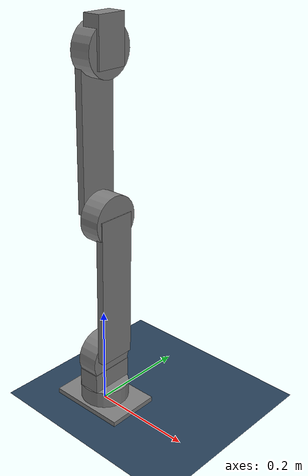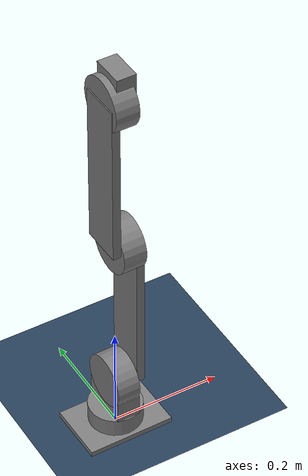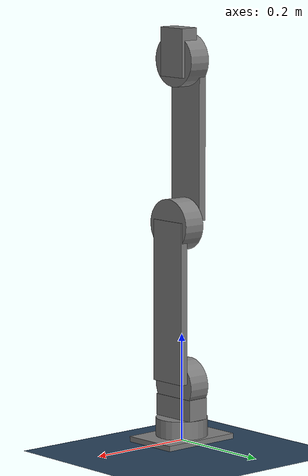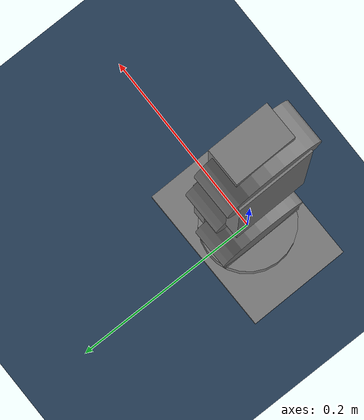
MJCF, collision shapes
<mujoco model="qmini_arm">
  <default>
    <default class="robot">
      <default class="visual">
        <geom contype="0" conaffinity="0" group="2" />
      </default>
      <default class="collision">
        <geom contype="1" conaffinity="1" group="3" />
      </default>
    </default>
    <default class="floor">
      <geom type="plane" size="2 2 0.05" material="groundplane" />
    </default>
  </default>

  <compiler angle="radian" meshdir="." balanceinertia="true" autolimits="true" />
  <option timestep="0.001" gravity="0 0 -9.80665" integrator="implicitfast"
          solver="Newton" iterations="100" />

  <visual>
    <global offwidth="3840" offheight="2160" />
    <headlight ambient="0.35 0.35 0.35" diffuse="0.8 0.8 0.8"
               specular="0.25 0.25 0.25" />
    <rgba haze="0.15 0.25 0.35 1" />
  </visual>

  <worldbody>
    <!-- The root body is free to translate and rotate in the world. -->
    <body name="qarm_root" childclass="robot" pos="0 0 0.0232">
      <joint name="root_free" type="free" />
      <body name="base_link" quat="0.6595 0.2558 -0.659 0.2556">
        <inertial pos="-0.001443936 0.000095279 0.000025880" mass="0.594063035" diaginertia="0.000935107 0.00055038 0.000529948" />
        <geom name="base_link_collision_0" quat="0.7071 0 0.7071 0" type="cylinder" size="0.04825 0.02115" class="collision" />
        <geom name="base_link_collision_1" pos="-0.018149996 0.000000291 -0.000000098" quat="0.6609 -0.2513 -0.2513 -0.6609" type="box" size="0.055 0.005 0.07944" class="collision" />
        <geom name="base_link_visual_0" type="mesh" mesh="base_link_motor" material="motor_gray" class="visual" />
        <geom name="base_link_visual_1" pos="-0.013149996 -0.040727332 -0.045814406" quat="0.6451 0.2897 -0.6451 -0.2897" type="mesh" mesh="base_link_base_pair" material="link_silver" class="visual" />
        <body name="link_1">
          <inertial pos="0.076902896 -0.000540190 -0.000692581" mass="0.567450382" diaginertia="0.000373485 0.00059489 0.000625051" />
          <joint name="joint_1" type="hinge" range="-3.141592654 3.141592654"
                 axis="1 0 0" damping="0.08" armature="0.001" />
          <geom name="link_1_collision_0" pos="0.041150004 0.000000013 -0.000000002" quat="0.6609 -0.2513 -0.2513 -0.6609" type="box" size="0.045 0.02 0.0215" class="collision" />
          <geom name="link_1_collision_1" pos="0.082449884 0.000464880 0.000523357" quat="-0.1263 -0.3322 -0.8737 0.3322" type="cylinder" size="0.04825 0.02115" class="collision" />
          <geom name="link_1_visual_0" pos="0.021150004 0.000000013 -0.000000002" quat="0.6609 -0.2513 -0.2513 -0.6609" type="mesh" mesh="link_1_joint_bracket" material="link_silver" class="visual" />
          <geom name="link_1_visual_1" pos="0.082449884 0.000464880 0.000523357" quat="0.7071 0 0.5285 -0.4698" type="mesh" mesh="base_link_motor" material="motor_gray" class="visual" />
          <body name="link_2" pos="0.082449884 0.000464880 0.000523357" quat="0.5002 0.4998 0.0418 -0.7059">
            <inertial pos="0.016355333 0.193045983 -0.171512178" mass="0.676212997" diaginertia="0.005975646 0.002778247 0.003380604" />
            <joint name="joint_2" type="hinge" range="-1.75 1.75"
                   axis="1 0 0" damping="0.08" armature="0.001" />
            <geom name="link_2_collision_0" pos="0.028650004 0.117945600 -0.104848942" quat="0.2513 0.6609 0.6609 -0.2513" type="box" size="0.15015 0.0075 0.0375" class="collision" />
            <geom name="link_2_collision_1" pos="0.013000008 0.224214994 -0.199318371" quat="0.4698 0.5285 -0.4698 -0.5285" type="cylinder" size="0.04825 0.02115" class="collision" />
            <geom name="link_2_visual_0" pos="0.026150004 0.224214862 -0.199318093" quat="0.2513 0.6609 0.6609 -0.2513" type="mesh" mesh="link_2_arm_link" material="link_silver" class="visual" />
            <geom name="link_2_visual_1" pos="0.013000008 0.224214994 -0.199318371" quat="0 0 -0.6644 -0.7474" type="mesh" mesh="base_link_motor" material="motor_gray" class="visual" />
            <body name="link_3" pos="0.013000008 0.224214994 -0.199318371" quat="0 0 -0.6644 -0.7474">
              <inertial pos="0.016353625 -0.193059219 0.171524730" mass="0.676213" diaginertia="0.0059635475 0.00277030433 0.00337659291" />
              <joint name="joint_3" type="hinge" range="-2.62 2.62"
                     axis="1 0 0" damping="0.08" armature="0.001" />
              <geom name="link_3_collision_0" pos="0.028650004 -0.117945574 0.104848938" quat="0.6609 -0.2513 -0.2513 -0.6609" type="box" size="0.15015 0.0075 0.0375" class="collision" />
              <geom name="link_3_collision_1" pos="0.013000008 -0.224214968 0.199318367" quat="0.5285 -0.4698 -0.5285 0.4698" type="cylinder" size="0.04825 0.02115" class="collision" />
              <geom name="link_3_visual_0" pos="0.026150004 -0.224214836 0.199318089" quat="0.6609 -0.2513 -0.2513 -0.6609" type="mesh" mesh="link_2_arm_link" material="link_silver" class="visual" />
              <geom name="link_3_visual_1" pos="0.013000008 -0.224214968 0.199318367" quat="0 0 0.7474 -0.6644" type="mesh" mesh="base_link_motor" material="motor_gray" class="visual" />
              <body name="link_6" pos="0.013000008 -0.224214968 0.199318367" quat="0 0 0.7474 -0.6644">
                <inertial pos="0.021295905 -0.013071630 0.011629218" mass="0.0166536" diaginertia="1.4346087e-05 7.453285e-06 8.467991e-06" />
                <joint name="joint_4" type="hinge" range="-2.094395102 2.094395102"
                       axis="1 0 0" damping="0.08" armature="0.001" />
                <geom name="link_6_collision" pos="0.008650004 -0.011444917 0.010174086" quat="-0.2513 -0.6609 0.6609 -0.2513" type="box" size="0.0447 0.0175 0.0295" class="collision" />
                <geom name="link_6_visual" pos="0.026150004 0.000000013 -0.000000002" quat="-0.2513 -0.6609 0.6609 -0.2513" type="mesh" mesh="link_6_tool_mount" material="tool_gray" class="visual" />
                <body name="tool0" pos="0.008650004 -0.044843211 0.039863329" quat="-0.2513 -0.6609 0.6609 -0.2513">
                  <site name="tool0_site" type="sphere" size="0.012"
                        rgba="0.95 0.25 0.10 1" group="3" />
                </body>
              </body>
            </body>
          </body>
        </body>
      </body>
    </body>
    <light pos="0 0 2." dir="0 0 -1" directional="true" />
    <geom name="floor" class="floor" size="0 0 0.05" />
    <camera name="overview" mode="targetbody" target="link_3"
            pos="0.95 -1.20 0.72" />
  </worldbody>

  <asset>
    <material name="motor_gray" rgba="0.27 0.29 0.32 1.0" />
    <material name="link_silver" rgba="0.72 0.74 0.77 1.0" />
    <material name="tool_gray" rgba="0.40 0.43 0.47 1.0" />
    <mesh name="base_link_motor" file="meshes/meshes/visual/motor.stl" />
    <mesh name="base_link_base_pair" file="meshes/meshes/visual/base_pair.stl" />
    <mesh name="link_1_joint_bracket" file="meshes/meshes/visual/joint_bracket.stl" />
    <mesh name="link_2_arm_link" file="meshes/meshes/visual/arm_link.stl" />
    <mesh name="link_6_tool_mount" file="meshes/meshes/visual/tool_mount.stl" />
    <texture type="2d" name="groundplane" builtin="checker" mark="edge" rgb1="0.2 0.3 0.4" rgb2="0.1 0.2 0.3" markrgb="0.8 0.8 0.8" width="300" height="300" />
    <material name="groundplane" texture="groundplane" texuniform="true" texrepeat="5 5" reflectance="0.2" />
    <texture type="skybox" builtin="gradient" rgb1="0.3 0.5 0.7" rgb2="0 0 0" width="512" height="3072" />
  </asset>

  <actuator>
    <!-- M8010-6 public maximum output torque; continuous torque is not identified. -->
    <motor name="joint_1_motor" joint="joint_1" gear="1"
           ctrllimited="true" ctrlrange="-23.7 23.7"
           forcelimited="true" forcerange="-23.7 23.7" />
    <motor name="joint_2_motor" joint="joint_2" gear="1"
           ctrllimited="true" ctrlrange="-23.7 23.7"
           forcelimited="true" forcerange="-23.7 23.7" />
    <motor name="joint_3_motor" joint="joint_3" gear="1"
           ctrllimited="true" ctrlrange="-23.7 23.7"
           forcelimited="true" forcerange="-23.7 23.7" />
    <motor name="joint_4_motor" joint="joint_4" gear="1"
           ctrllimited="true" ctrlrange="-23.7 23.7"
           forcelimited="true" forcerange="-23.7 23.7" />
  </actuator>

  <!-- Adjacent links share a joint and may overlap in their simplified shapes. -->
  <contact>
    <exclude body1="base_link" body2="link_1" />
    <exclude body1="link_1" body2="link_2" />
    <exclude body1="link_2" body2="link_3" />
    <exclude body1="link_3" body2="link_6" />
    <exclude body1="link_6" body2="tool0" />
  </contact>

  <sensor>
    <jointpos name="joint_1_position" joint="joint_1" />
    <jointpos name="joint_2_position" joint="joint_2" />
    <jointpos name="joint_3_position" joint="joint_3" />
    <jointpos name="joint_4_position" joint="joint_4" />
    <jointvel name="joint_1_velocity" joint="joint_1" />
    <jointvel name="joint_2_velocity" joint="joint_2" />
    <jointvel name="joint_3_velocity" joint="joint_3" />
    <jointvel name="joint_4_velocity" joint="joint_4" />
    <actuatorfrc name="joint_1_torque" actuator="joint_1_motor" />
    <actuatorfrc name="joint_2_torque" actuator="joint_2_motor" />
    <actuatorfrc name="joint_3_torque" actuator="joint_3_motor" />
    <actuatorfrc name="joint_4_torque" actuator="joint_4_motor" />
    <framepos name="tool0_position" objtype="site" objname="tool0_site" />
    <framequat name="tool0_orientation" objtype="site" objname="tool0_site" />
  </sensor>

  <keyframe>
    <key name="home" qpos="0 0 0.0232 1 0 0 0 0 0 0 0" />
  </keyframe>
</mujoco>
